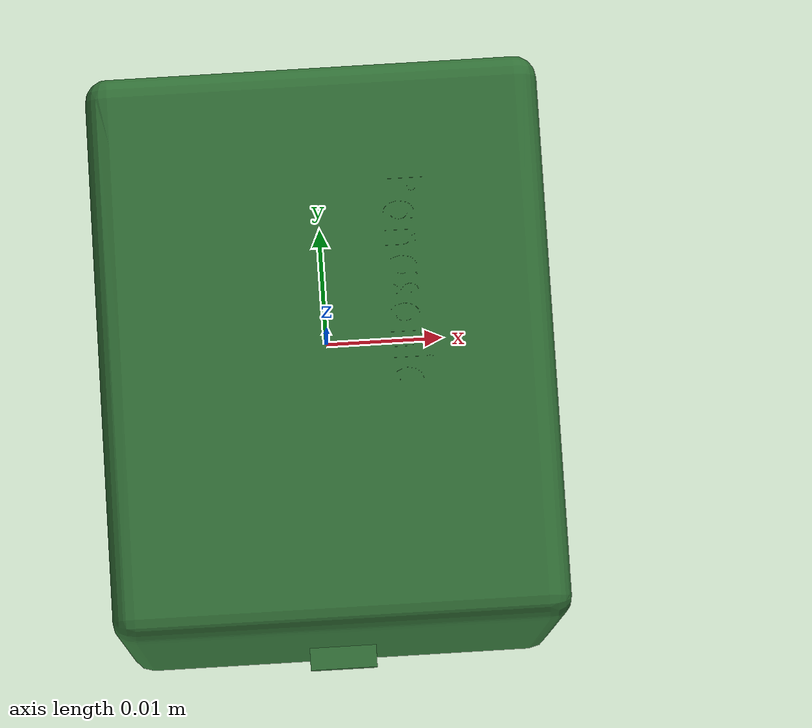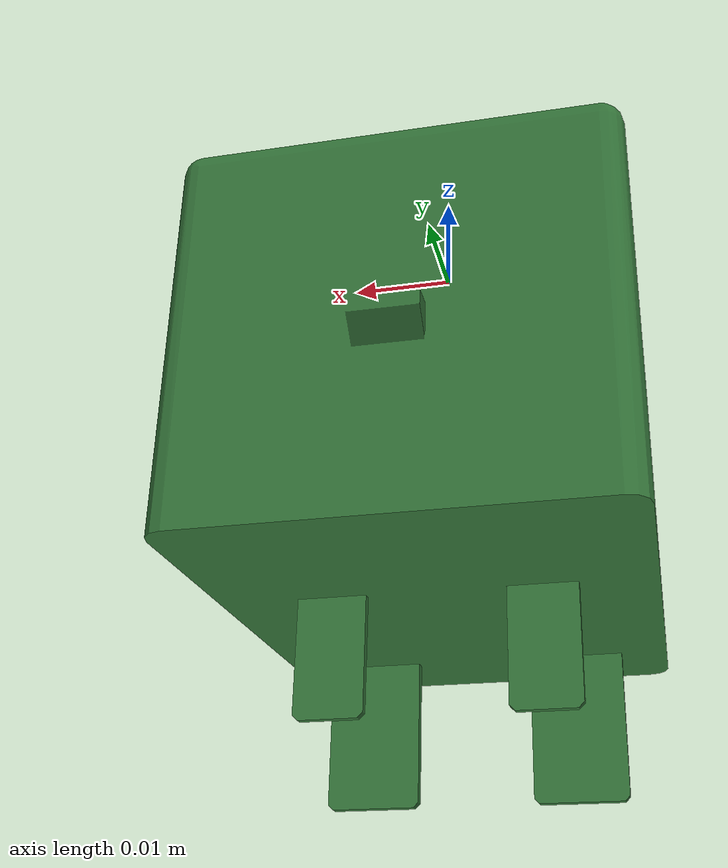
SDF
<?xml version="1.0" ?>
<sdf version="1.6">
  <model name="relay_part_02_2">
    <link name="link">
      <gravity>false</gravity>
      <visual name="visual">
        <geometry>
          <mesh>
            <uri>file:///root/workcell_ws_classic/src/descriptions/meshes/feeder/kiro/Relay_Part_02-2.STL</uri>
            <scale>1 1 1</scale>
          </mesh>
        </geometry>
        <material>
          <!-- Relay Part 02: dark green metallic -->
          <ambient>0.12 0.28 0.15 1</ambient>
          <diffuse>0.2 0.45 0.22 1</diffuse>
          <specular>0.3 0.3 0.3 1</specular>
          <emissive>0 0 0 1</emissive>
        </material>
      </visual>

        <inertial>
          <mass>0.5</mass>
          <inertia>
            <ixx>0.001</ixx>
            <ixy>0</ixy>
            <ixz>0</ixz>
            <iyy>0.001</iyy>
            <iyz>0</iyz>
            <izz>0.001</izz>
          </inertia>
        </inertial>
    </link>
  </model>
</sdf>
